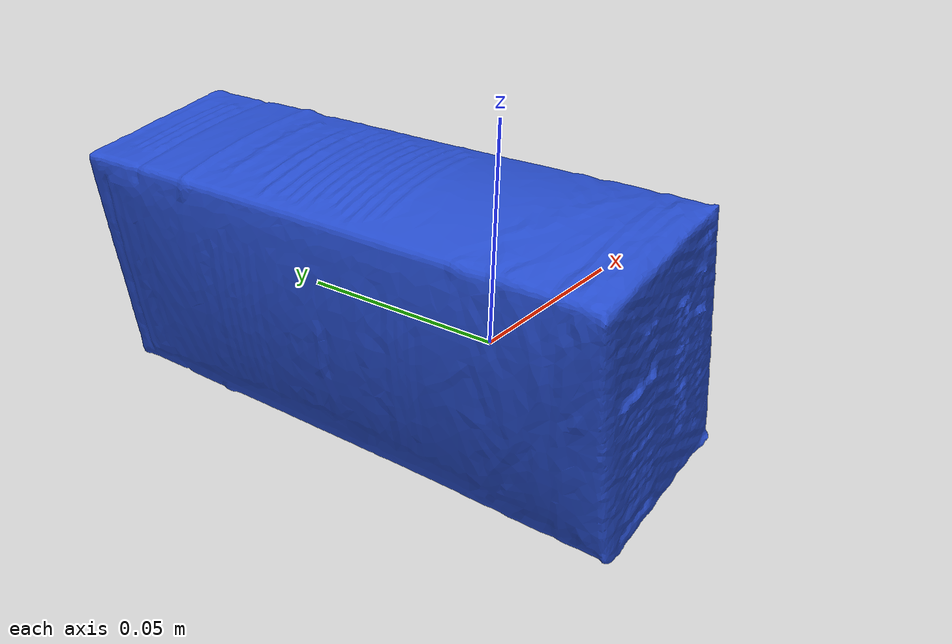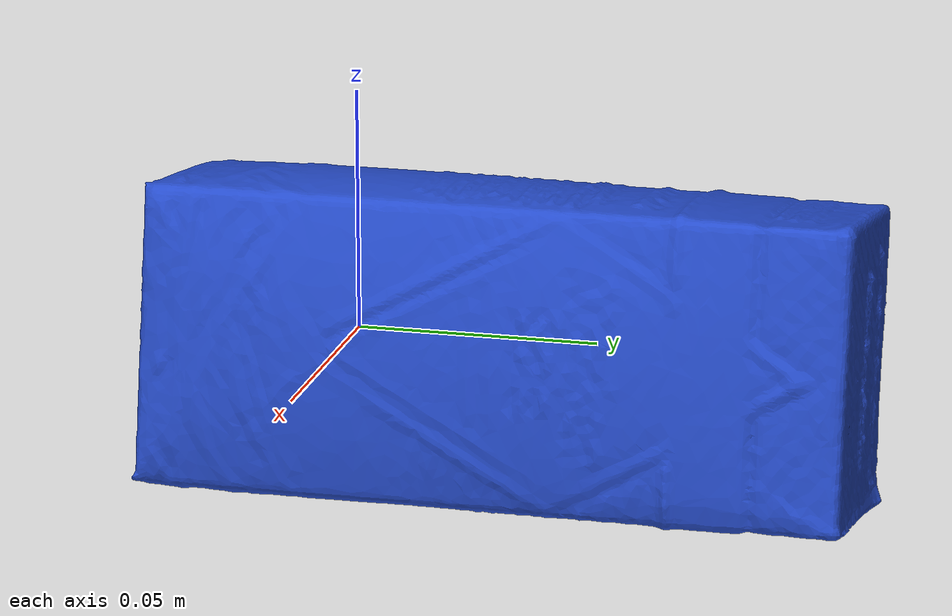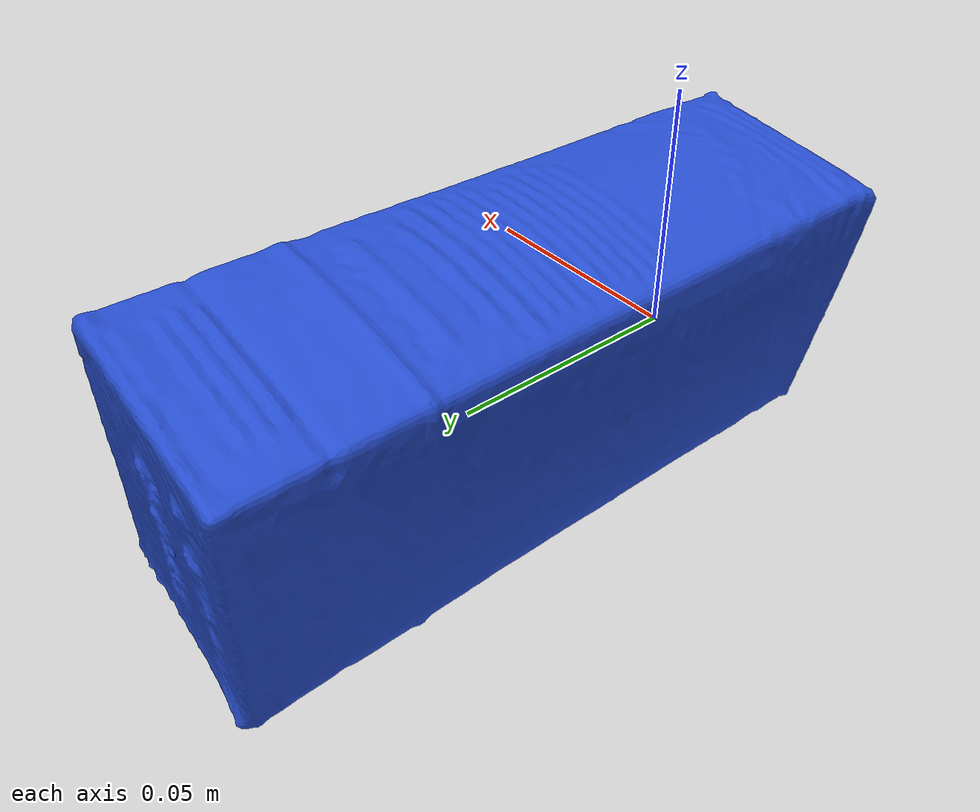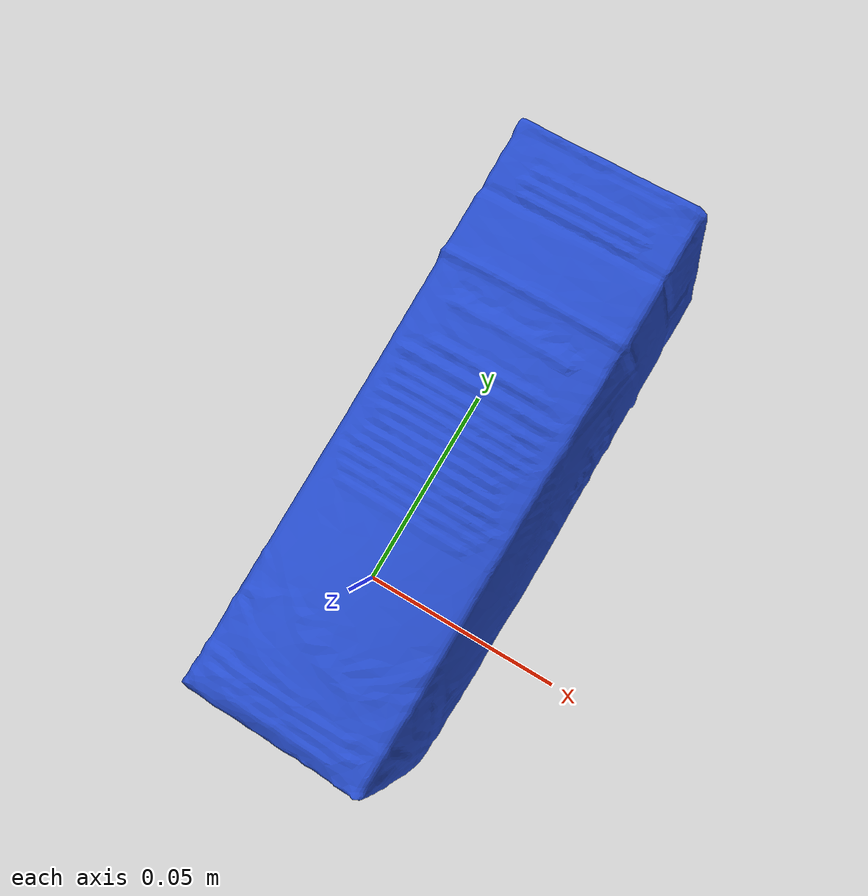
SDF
<?xml version='1.0'?>
<sdf version="1.4">
  <model name="BlueSaltCube">
    <static>false</static>
    <link name="link">
      <inertial>
        <pose>0.005595816398788435 0.033290136196214945 0.0003801973373221296 -1.5701068339800217 0.18361302492321363 3.138927200196359</pose>
        <mass>0.04735906858193539</mass>
        <inertia>
          <ixx>9.727383213864963e-05</ixx>
          <ixy>1.86973229948251e-21</ixy>
          <ixz>7.698576987786112e-21</ixz>
          <iyy>9.145730630664074e-05</iyy>
          <iyz>3.3734515893314446e-20</iyz>
          <izz>2.5773145259810167e-05</izz>
        </inertia>
      </inertial>
      <collision name="collision">
        <geometry>
          <mesh>
            <!-- Use a downsampled mesh for collisions -->
            <uri>model:///BlueSaltCube/BlueSaltCube_250_collision.obj</uri>
	        </mesh>
        </geometry>
        <surface>
      </surface>
      </collision>
      <visual name="visual">
        <geometry>
          <mesh>
            <uri>model:///BlueSaltCube/BlueSaltCube_25k_tex.obj</uri>
	        </mesh>
        </geometry>
        <material>
          <script>
            <uri>model:///BlueSaltCube/BlueSaltCube.material</uri>
            <name>BlueSaltCube</name>
          </script>
        </material>
      </visual>
    </link>
  </model>
</sdf>
